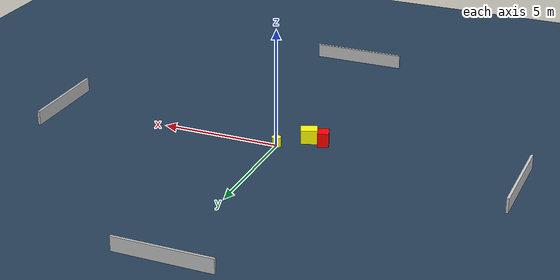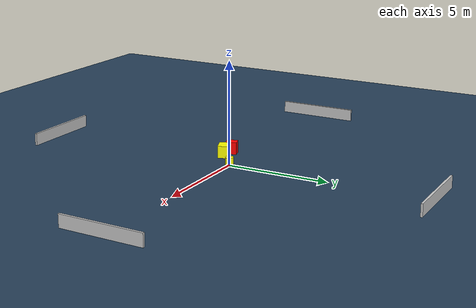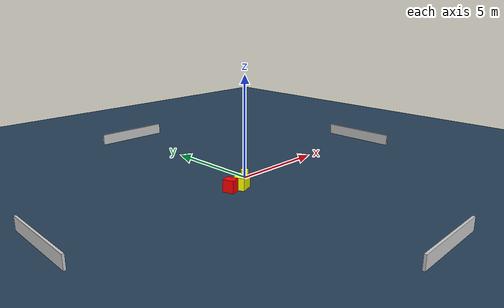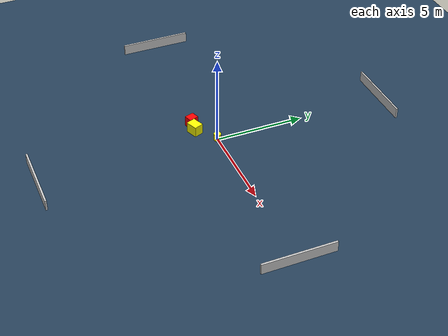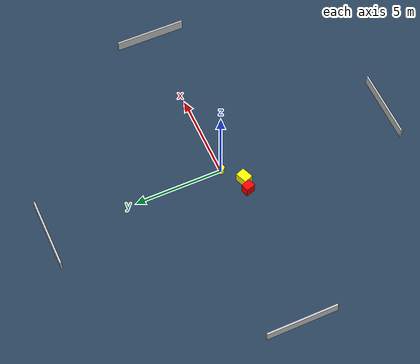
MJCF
<?xml version="1.0" ?>
<mujoco model="generated_environment">
  <option timestep="0.01" integrator="RK4" cone="elliptic"/>
  <default>
    <geom density="1"/>
  </default>
  <asset>
    <texture builtin="gradient" height="3072" name="skybox" rgb1="0.3 0.5 0.7" rgb2="0 0 0" type="skybox" width="512"/>
    <texture builtin="checker" height="300" name="groundplane" rgb1="0.2 0.3 0.4" rgb2="0.1 0.2 0.3" type="2d" width="300"/>
    <material name="groundplane" reflectance="0.2" texrepeat="5 5" texture="groundplane"/>
  </asset>
  <worldbody>
    <light dir="0 0 -1" directional="true" pos="0 0 1.5"/>
    <geom condim="3" friction="0.5 0.005 0.001" material="groundplane" name="floor" pos="0 0 0" size="0 0 0.05" type="plane"/>
    <body name="walls">
      <geom name="wall_1" condim="4" pos="-10.0 0.0 0.3" rgba="0.800000011920929 0.800000011920929 0.800000011920929 1.0" size="0.05 2.0 0.3" type="box"/>
      <geom name="wall_2" condim="4" pos="10.0 0.0 0.3" rgba="0.800000011920929 0.800000011920929 0.800000011920929 1.0" size="0.05 2.0 0.3" type="box"/>
      <geom name="wall_3" condim="4" pos="0.0 -10.0 0.3" rgba="0.800000011920929 0.800000011920929 0.800000011920929 1.0" size="2.0 0.05 0.3" type="box"/>
      <geom name="wall_4" condim="4" pos="0.0 10.0 0.3" rgba="0.800000011920929 0.800000011920929 0.800000011920929 1.0" size="2.0 0.05 0.3" type="box"/>
    </body>
    <body name="robot">
      <joint name="joint_x" type="slide" pos="0 0 0" axis="1 0 0"/>
      <joint name="joint_y" type="slide" pos="0 0 0" axis="0 1 0"/>
      <geom name="robot" type="cylinder" pos="0.0 0.0 0.2" size="0.2 0.2 0.0" mass="5.0" friction="1.0 0.005 0.0001" condim="4" rgba="1.0 1.0 0.0 1.0"/>
    </body>
    <body name="obstacle_1_movable">
      <geom name="obstacle_1_movable" condim="4" pos="-1.0750962869063752 -0.8914958135223341 0.3" euler="0 0 291.40185438949976" friction="0.0 0.005 0.001" rgba="1.0 1.0 0.0 1.0" size="0.2688357788145828 0.34153979202576873 0.3" type="box" mass="0.1"/>
      <joint type="free"/>
    </body>
    <body name="obstacle_2_static">
      <geom name="obstacle_2_static" condim="4" pos="-1.718021933532977 -0.8277734523675858 0.3" euler="0 0 287.233707507484" friction="0.0 0.005 0.001" rgba="1.0 0.0 0.0 1.0" size="0.2701764350648474 0.2300094013091858 0.3" type="box"/>
    </body>
  </worldbody>
  <actuator>
    <motor name="actuator_x" joint="joint_x" gear="1" ctrlrange="-1 1"/>
    <motor name="actuator_y" joint="joint_y" gear="1" ctrlrange="-1 1"/>
  </actuator>
</mujoco>
